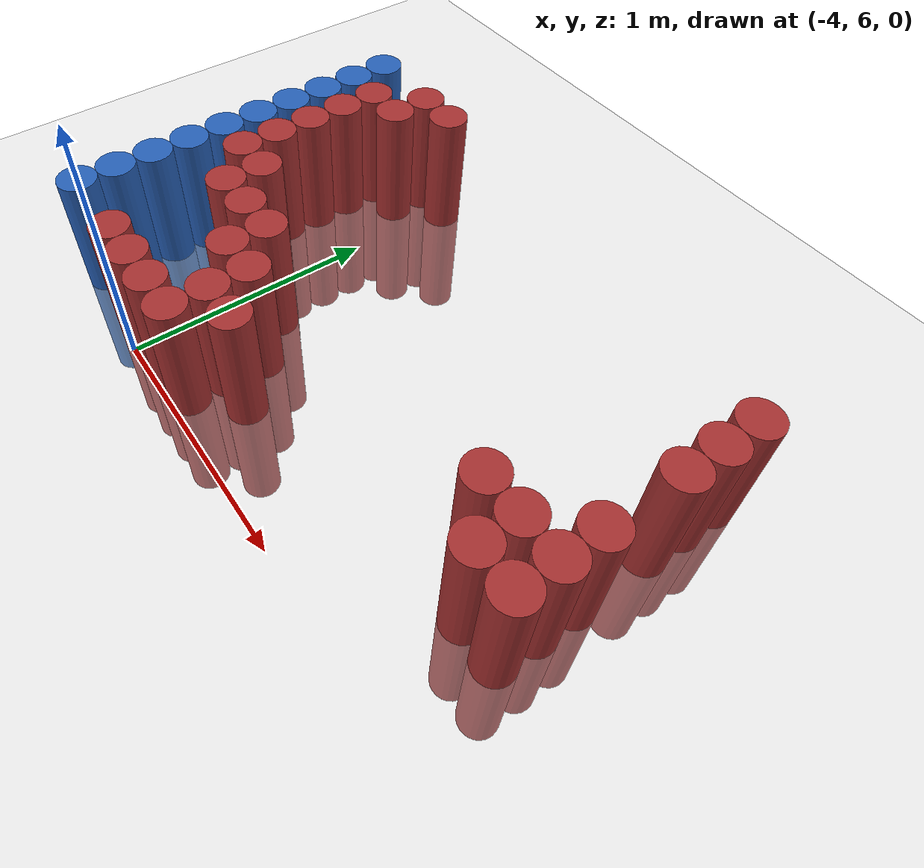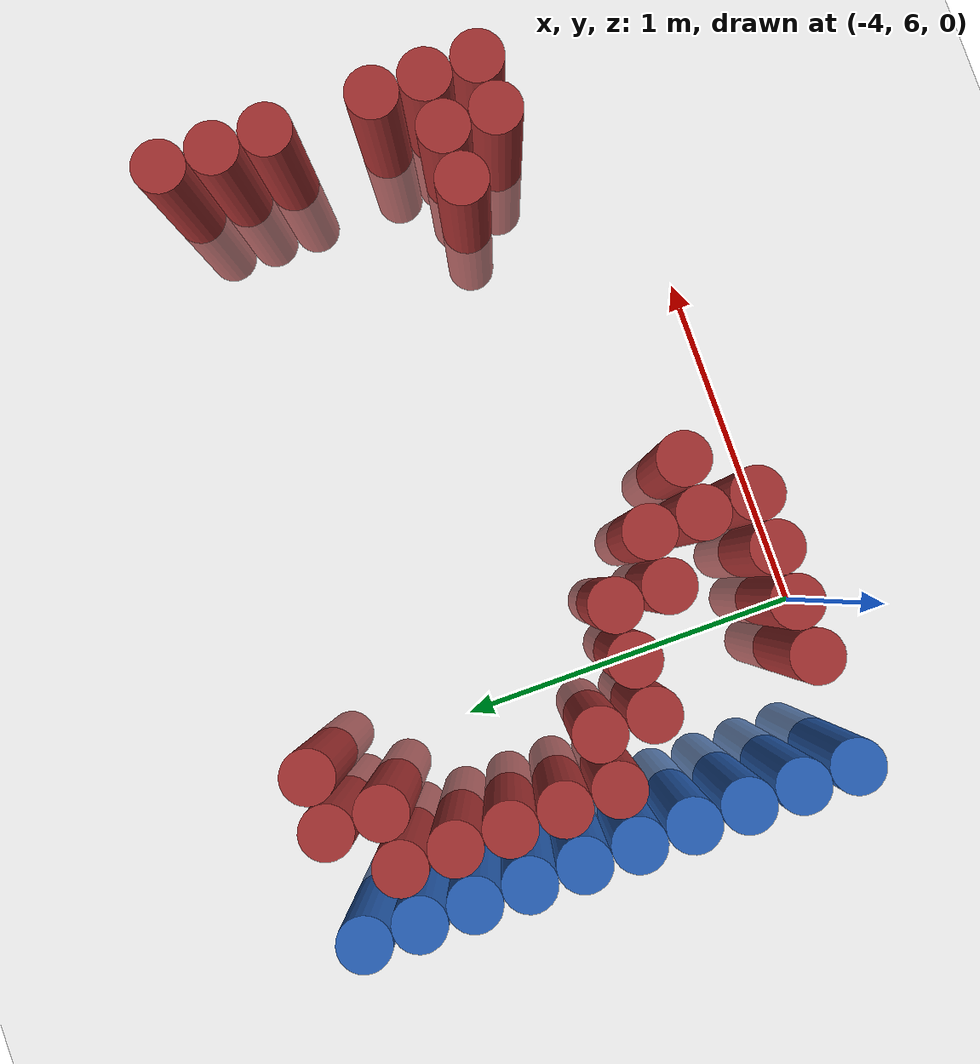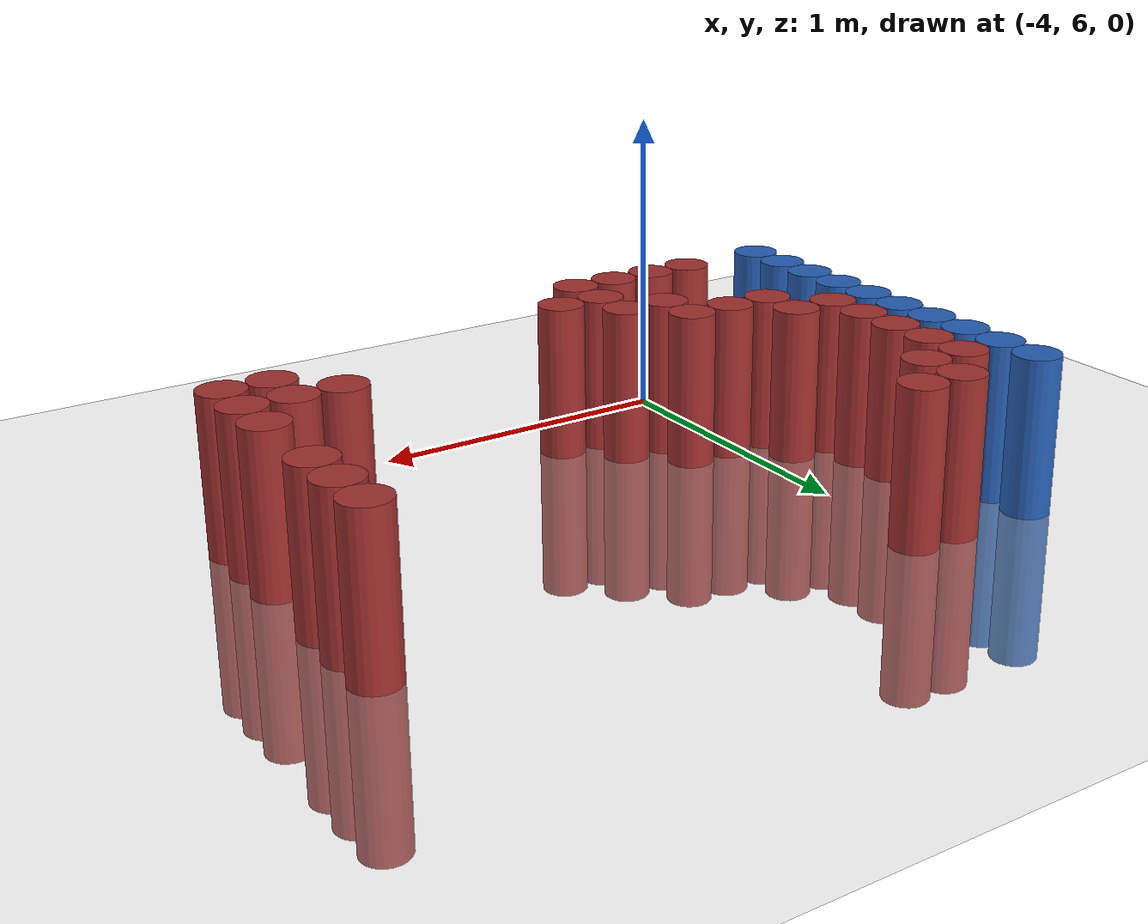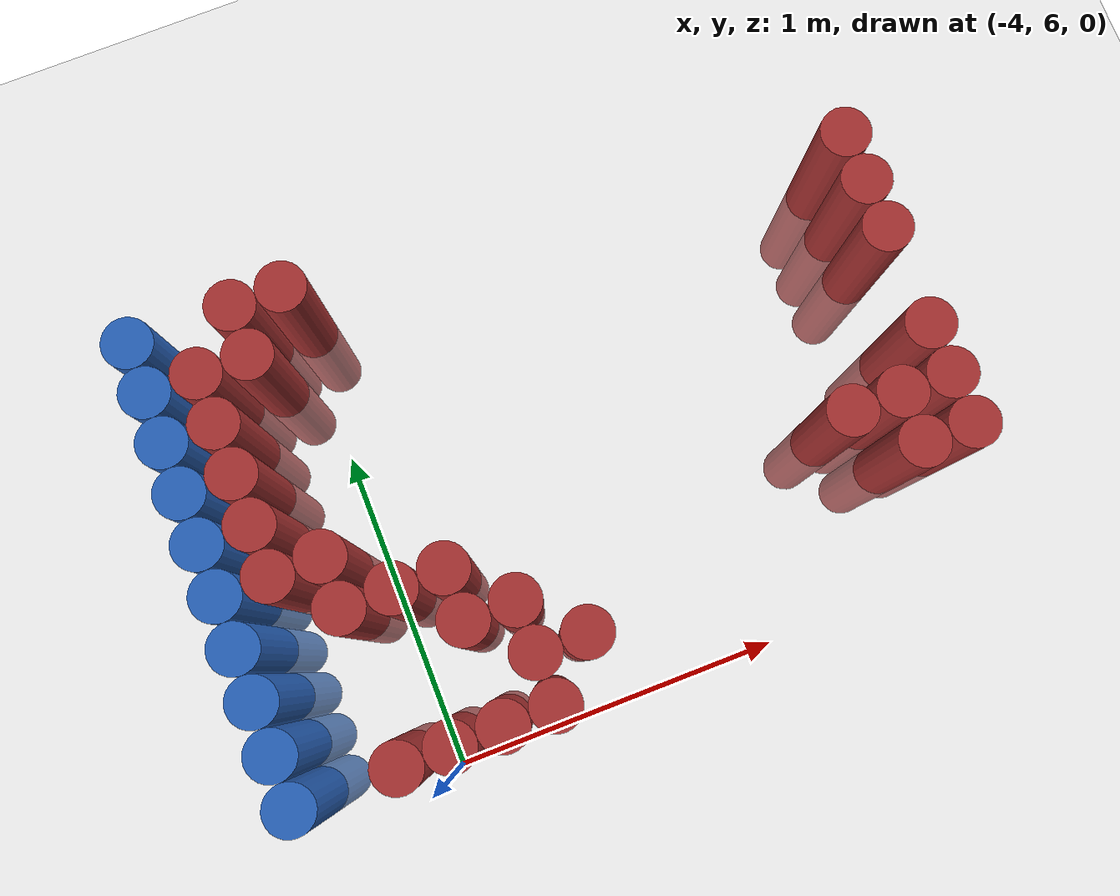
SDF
<sdf version="1.6">
 <world name="default">
  <model name="ground_plane">
   <static>1</static>
   <link name="link">
    <collision name="collision">
     <geometry><plane><normal>0 0 1</normal><size>100 100</size></plane></geometry>
     <surface><friction><ode><mu>100</mu><mu2>50</mu2></ode></friction></surface>
    </collision>
    <visual name="visual">
     <cast_shadows>0</cast_shadows>
     <geometry><plane><normal>0 0 1</normal><size>100 100</size></plane></geometry>
     <material>
      <script><uri>file://media/materials/scripts/gazebo.material</uri><name>Gazebo/Grey</name></script>
     </material>
    </visual>
   </link>
  </model>
  <model name="unit_cylinder_102">
   <static>1</static>
   <pose>-4.425000 6.075000 0.000000 0.000000 0.000000 0.000000</pose>
   <link name="link">
    <inertial>
     <mass>1</mass>
     <inertia><ixx>0.145833</ixx><ixy>0</ixy><ixz>0</ixz><iyy>0.145833</iyy><iyz>0</iyz><izz>0.125</izz></inertia>
    </inertial>
    <collision name="collision">
     <geometry><cylinder><radius>0.075000</radius><length>1</length></cylinder></geometry>
    </collision>
    <visual name="visual">
     <geometry><cylinder><radius>0.075000</radius><length>1</length></cylinder></geometry>
     <material>
      <ambient>0.152000 0.379000 0.720000 1</ambient>
      <diffuse>0.152000 0.379000 0.720000 1</diffuse>
     </material>
     <material>
      <script><name>Gazebo/Grey</name><uri>file://media/materials/scripts/gazebo.material</uri></script>
     </material>
    </visual>
    <sensor name="sensor_contact" type="contact"><contact><collision>collision</collision></contact></sensor>
   </link>
   <plugin filename="gz-sim-touchplugin-system" name="gz::sim::systems::TouchPlugin">
    <target>robot</target>
    <namespace>robot</namespace>
    <time>0.001</time>
    <enabled>true</enabled>
   </plugin>
  </model>
  <model name="unit_cylinder_103">
   <static>1</static>
   <pose>-4.425000 6.225000 0.000000 0.000000 0.000000 0.000000</pose>
   <link name="link">
    <inertial>
     <mass>1</mass>
     <inertia><ixx>0.145833</ixx><ixy>0</ixy><ixz>0</ixz><iyy>0.145833</iyy><iyz>0</iyz><izz>0.125</izz></inertia>
    </inertial>
    <collision name="collision">
     <geometry><cylinder><radius>0.075000</radius><length>1</length></cylinder></geometry>
    </collision>
    <visual name="visual">
     <geometry><cylinder><radius>0.075000</radius><length>1</length></cylinder></geometry>
     <material>
      <ambient>0.152000 0.379000 0.720000 1</ambient>
      <diffuse>0.152000 0.379000 0.720000 1</diffuse>
     </material>
     <material>
      <script><name>Gazebo/Grey</name><uri>file://media/materials/scripts/gazebo.material</uri></script>
     </material>
    </visual>
    <sensor name="sensor_contact" type="contact"><contact><collision>collision</collision></contact></sensor>
   </link>
   <plugin filename="gz-sim-touchplugin-system" name="gz::sim::systems::TouchPlugin">
    <target>robot</target>
    <namespace>robot</namespace>
    <time>0.001</time>
    <enabled>true</enabled>
   </plugin>
  </model>
  <model name="unit_cylinder_104">
   <static>1</static>
   <pose>-4.425000 6.375000 0.000000 0.000000 0.000000 0.000000</pose>
   <link name="link">
    <inertial>
     <mass>1</mass>
     <inertia><ixx>0.145833</ixx><ixy>0</ixy><ixz>0</ixz><iyy>0.145833</iyy><iyz>0</iyz><izz>0.125</izz></inertia>
    </inertial>
    <collision name="collision">
     <geometry><cylinder><radius>0.075000</radius><length>1</length></cylinder></geometry>
    </collision>
    <visual name="visual">
     <geometry><cylinder><radius>0.075000</radius><length>1</length></cylinder></geometry>
     <material>
      <ambient>0.152000 0.379000 0.720000 1</ambient>
      <diffuse>0.152000 0.379000 0.720000 1</diffuse>
     </material>
     <material>
      <script><name>Gazebo/Grey</name><uri>file://media/materials/scripts/gazebo.material</uri></script>
     </material>
    </visual>
    <sensor name="sensor_contact" type="contact"><contact><collision>collision</collision></contact></sensor>
   </link>
   <plugin filename="gz-sim-touchplugin-system" name="gz::sim::systems::TouchPlugin">
    <target>robot</target>
    <namespace>robot</namespace>
    <time>0.001</time>
    <enabled>true</enabled>
   </plugin>
  </model>
  <model name="unit_cylinder_105">
   <static>1</static>
   <pose>-4.425000 6.525000 0.000000 0.000000 0.000000 0.000000</pose>
   <link name="link">
    <inertial>
     <mass>1</mass>
     <inertia><ixx>0.145833</ixx><ixy>0</ixy><ixz>0</ixz><iyy>0.145833</iyy><iyz>0</iyz><izz>0.125</izz></inertia>
    </inertial>
    <collision name="collision">
     <geometry><cylinder><radius>0.075000</radius><length>1</length></cylinder></geometry>
    </collision>
    <visual name="visual">
     <geometry><cylinder><radius>0.075000</radius><length>1</length></cylinder></geometry>
     <material>
      <ambient>0.152000 0.379000 0.720000 1</ambient>
      <diffuse>0.152000 0.379000 0.720000 1</diffuse>
     </material>
     <material>
      <script><name>Gazebo/Grey</name><uri>file://media/materials/scripts/gazebo.material</uri></script>
     </material>
    </visual>
    <sensor name="sensor_contact" type="contact"><contact><collision>collision</collision></contact></sensor>
   </link>
   <plugin filename="gz-sim-touchplugin-system" name="gz::sim::systems::TouchPlugin">
    <target>robot</target>
    <namespace>robot</namespace>
    <time>0.001</time>
    <enabled>true</enabled>
   </plugin>
  </model>
  <model name="unit_cylinder_106">
   <static>1</static>
   <pose>-4.425000 6.675000 0.000000 0.000000 0.000000 0.000000</pose>
   <link name="link">
    <inertial>
     <mass>1</mass>
     <inertia><ixx>0.145833</ixx><ixy>0</ixy><ixz>0</ixz><iyy>0.145833</iyy><iyz>0</iyz><izz>0.125</izz></inertia>
    </inertial>
    <collision name="collision">
     <geometry><cylinder><radius>0.075000</radius><length>1</length></cylinder></geometry>
    </collision>
    <visual name="visual">
     <geometry><cylinder><radius>0.075000</radius><length>1</length></cylinder></geometry>
     <material>
      <ambient>0.152000 0.379000 0.720000 1</ambient>
      <diffuse>0.152000 0.379000 0.720000 1</diffuse>
     </material>
     <material>
      <script><name>Gazebo/Grey</name><uri>file://media/materials/scripts/gazebo.material</uri></script>
     </material>
    </visual>
    <sensor name="sensor_contact" type="contact"><contact><collision>collision</collision></contact></sensor>
   </link>
   <plugin filename="gz-sim-touchplugin-system" name="gz::sim::systems::TouchPlugin">
    <target>robot</target>
    <namespace>robot</namespace>
    <time>0.001</time>
    <enabled>true</enabled>
   </plugin>
  </model>
  <model name="unit_cylinder_107">
   <static>1</static>
   <pose>-4.425000 6.825000 0.000000 0.000000 0.000000 0.000000</pose>
   <link name="link">
    <inertial>
     <mass>1</mass>
     <inertia><ixx>0.145833</ixx><ixy>0</ixy><ixz>0</ixz><iyy>0.145833</iyy><iyz>0</iyz><izz>0.125</izz></inertia>
    </inertial>
    <collision name="collision">
     <geometry><cylinder><radius>0.075000</radius><length>1</length></cylinder></geometry>
    </collision>
    <visual name="visual">
     <geometry><cylinder><radius>0.075000</radius><length>1</length></cylinder></geometry>
     <material>
      <ambient>0.152000 0.379000 0.720000 1</ambient>
      <diffuse>0.152000 0.379000 0.720000 1</diffuse>
     </material>
     <material>
      <script><name>Gazebo/Grey</name><uri>file://media/materials/scripts/gazebo.material</uri></script>
     </material>
    </visual>
    <sensor name="sensor_contact" type="contact"><contact><collision>collision</collision></contact></sensor>
   </link>
   <plugin filename="gz-sim-touchplugin-system" name="gz::sim::systems::TouchPlugin">
    <target>robot</target>
    <namespace>robot</namespace>
    <time>0.001</time>
    <enabled>true</enabled>
   </plugin>
  </model>
  <model name="unit_cylinder_108">
   <static>1</static>
   <pose>-4.425000 6.975000 0.000000 0.000000 0.000000 0.000000</pose>
   <link name="link">
    <inertial>
     <mass>1</mass>
     <inertia><ixx>0.145833</ixx><ixy>0</ixy><ixz>0</ixz><iyy>0.145833</iyy><iyz>0</iyz><izz>0.125</izz></inertia>
    </inertial>
    <collision name="collision">
     <geometry><cylinder><radius>0.075000</radius><length>1</length></cylinder></geometry>
    </collision>
    <visual name="visual">
     <geometry><cylinder><radius>0.075000</radius><length>1</length></cylinder></geometry>
     <material>
      <ambient>0.152000 0.379000 0.720000 1</ambient>
      <diffuse>0.152000 0.379000 0.720000 1</diffuse>
     </material>
     <material>
      <script><name>Gazebo/Grey</name><uri>file://media/materials/scripts/gazebo.material</uri></script>
     </material>
    </visual>
    <sensor name="sensor_contact" type="contact"><contact><collision>collision</collision></contact></sensor>
   </link>
   <plugin filename="gz-sim-touchplugin-system" name="gz::sim::systems::TouchPlugin">
    <target>robot</target>
    <namespace>robot</namespace>
    <time>0.001</time>
    <enabled>true</enabled>
   </plugin>
  </model>
  <model name="unit_cylinder_109">
   <static>1</static>
   <pose>-4.425000 7.125000 0.000000 0.000000 0.000000 0.000000</pose>
   <link name="link">
    <inertial>
     <mass>1</mass>
     <inertia><ixx>0.145833</ixx><ixy>0</ixy><ixz>0</ixz><iyy>0.145833</iyy><iyz>0</iyz><izz>0.125</izz></inertia>
    </inertial>
    <collision name="collision">
     <geometry><cylinder><radius>0.075000</radius><length>1</length></cylinder></geometry>
    </collision>
    <visual name="visual">
     <geometry><cylinder><radius>0.075000</radius><length>1</length></cylinder></geometry>
     <material>
      <ambient>0.152000 0.379000 0.720000 1</ambient>
      <diffuse>0.152000 0.379000 0.720000 1</diffuse>
     </material>
     <material>
      <script><name>Gazebo/Grey</name><uri>file://media/materials/scripts/gazebo.material</uri></script>
     </material>
    </visual>
    <sensor name="sensor_contact" type="contact"><contact><collision>collision</collision></contact></sensor>
   </link>
   <plugin filename="gz-sim-touchplugin-system" name="gz::sim::systems::TouchPlugin">
    <target>robot</target>
    <namespace>robot</namespace>
    <time>0.001</time>
    <enabled>true</enabled>
   </plugin>
  </model>
  <model name="unit_cylinder_110">
   <static>1</static>
   <pose>-4.425000 7.275000 0.000000 0.000000 0.000000 0.000000</pose>
   <link name="link">
    <inertial>
     <mass>1</mass>
     <inertia><ixx>0.145833</ixx><ixy>0</ixy><ixz>0</ixz><iyy>0.145833</iyy><iyz>0</iyz><izz>0.125</izz></inertia>
    </inertial>
    <collision name="collision">
     <geometry><cylinder><radius>0.075000</radius><length>1</length></cylinder></geometry>
    </collision>
    <visual name="visual">
     <geometry><cylinder><radius>0.075000</radius><length>1</length></cylinder></geometry>
     <material>
      <ambient>0.152000 0.379000 0.720000 1</ambient>
      <diffuse>0.152000 0.379000 0.720000 1</diffuse>
     </material>
     <material>
      <script><name>Gazebo/Grey</name><uri>file://media/materials/scripts/gazebo.material</uri></script>
     </material>
    </visual>
    <sensor name="sensor_contact" type="contact"><contact><collision>collision</collision></contact></sensor>
   </link>
   <plugin filename="gz-sim-touchplugin-system" name="gz::sim::systems::TouchPlugin">
    <target>robot</target>
    <namespace>robot</namespace>
    <time>0.001</time>
    <enabled>true</enabled>
   </plugin>
  </model>
  <model name="unit_cylinder_111">
   <static>1</static>
   <pose>-4.425000 7.425000 0.000000 0.000000 0.000000 0.000000</pose>
   <link name="link">
    <inertial>
     <mass>1</mass>
     <inertia><ixx>0.145833</ixx><ixy>0</ixy><ixz>0</ixz><iyy>0.145833</iyy><iyz>0</iyz><izz>0.125</izz></inertia>
    </inertial>
    <collision name="collision">
     <geometry><cylinder><radius>0.075000</radius><length>1</length></cylinder></geometry>
    </collision>
    <visual name="visual">
     <geometry><cylinder><radius>0.075000</radius><length>1</length></cylinder></geometry>
     <material>
      <ambient>0.152000 0.379000 0.720000 1</ambient>
      <diffuse>0.152000 0.379000 0.720000 1</diffuse>
     </material>
     <material>
      <script><name>Gazebo/Grey</name><uri>file://media/materials/scripts/gazebo.material</uri></script>
     </material>
    </visual>
    <sensor name="sensor_contact" type="contact"><contact><collision>collision</collision></contact></sensor>
   </link>
   <plugin filename="gz-sim-touchplugin-system" name="gz::sim::systems::TouchPlugin">
    <target>robot</target>
    <namespace>robot</namespace>
    <time>0.001</time>
    <enabled>true</enabled>
   </plugin>
  </model>
  <model name="unit_cylinder_128">
   <static>1</static>
   <pose>-4.275000 6.675000 0.000000 0.000000 0.000000 0.000000</pose>
   <link name="link">
    <inertial>
     <mass>1</mass>
     <inertia><ixx>0.145833</ixx><ixy>0</ixy><ixz>0</ixz><iyy>0.145833</iyy><iyz>0</iyz><izz>0.125</izz></inertia>
    </inertial>
    <collision name="collision">
     <geometry><cylinder><radius>0.075000</radius><length>1</length></cylinder></geometry>
    </collision>
    <visual name="visual">
     <geometry><cylinder><radius>0.075000</radius><length>1</length></cylinder></geometry>
     <material>
      <ambient>0.648000 0.192000 0.192000 1</ambient>
      <diffuse>0.648000 0.192000 0.192000 1</diffuse>
     </material>
     <material>
      <script><name>Gazebo/Grey</name><uri>file://media/materials/scripts/gazebo.material</uri></script>
     </material>
    </visual>
    <sensor name="sensor_contact" type="contact"><contact><collision>collision</collision></contact></sensor>
   </link>
   <plugin filename="gz-sim-touchplugin-system" name="gz::sim::systems::TouchPlugin">
    <target>robot</target>
    <namespace>robot</namespace>
    <time>0.001</time>
    <enabled>true</enabled>
   </plugin>
  </model>
  <model name="unit_cylinder_129">
   <static>1</static>
   <pose>-4.275000 6.825000 0.000000 0.000000 0.000000 0.000000</pose>
   <link name="link">
    <inertial>
     <mass>1</mass>
     <inertia><ixx>0.145833</ixx><ixy>0</ixy><ixz>0</ixz><iyy>0.145833</iyy><iyz>0</iyz><izz>0.125</izz></inertia>
    </inertial>
    <collision name="collision">
     <geometry><cylinder><radius>0.075000</radius><length>1</length></cylinder></geometry>
    </collision>
    <visual name="visual">
     <geometry><cylinder><radius>0.075000</radius><length>1</length></cylinder></geometry>
     <material>
      <ambient>0.648000 0.192000 0.192000 1</ambient>
      <diffuse>0.648000 0.192000 0.192000 1</diffuse>
     </material>
     <material>
      <script><name>Gazebo/Grey</name><uri>file://media/materials/scripts/gazebo.material</uri></script>
     </material>
    </visual>
    <sensor name="sensor_contact" type="contact"><contact><collision>collision</collision></contact></sensor>
   </link>
   <plugin filename="gz-sim-touchplugin-system" name="gz::sim::systems::TouchPlugin">
    <target>robot</target>
    <namespace>robot</namespace>
    <time>0.001</time>
    <enabled>true</enabled>
   </plugin>
  </model>
  <model name="unit_cylinder_130">
   <static>1</static>
   <pose>-4.275000 6.975000 0.000000 0.000000 0.000000 0.000000</pose>
   <link name="link">
    <inertial>
     <mass>1</mass>
     <inertia><ixx>0.145833</ixx><ixy>0</ixy><ixz>0</ixz><iyy>0.145833</iyy><iyz>0</iyz><izz>0.125</izz></inertia>
    </inertial>
    <collision name="collision">
     <geometry><cylinder><radius>0.075000</radius><length>1</length></cylinder></geometry>
    </collision>
    <visual name="visual">
     <geometry><cylinder><radius>0.075000</radius><length>1</length></cylinder></geometry>
     <material>
      <ambient>0.648000 0.192000 0.192000 1</ambient>
      <diffuse>0.648000 0.192000 0.192000 1</diffuse>
     </material>
     <material>
      <script><name>Gazebo/Grey</name><uri>file://media/materials/scripts/gazebo.material</uri></script>
     </material>
    </visual>
    <sensor name="sensor_contact" type="contact"><contact><collision>collision</collision></contact></sensor>
   </link>
   <plugin filename="gz-sim-touchplugin-system" name="gz::sim::systems::TouchPlugin">
    <target>robot</target>
    <namespace>robot</namespace>
    <time>0.001</time>
    <enabled>true</enabled>
   </plugin>
  </model>
  <model name="unit_cylinder_131">
   <static>1</static>
   <pose>-4.275000 7.125000 0.000000 0.000000 0.000000 0.000000</pose>
   <link name="link">
    <inertial>
     <mass>1</mass>
     <inertia><ixx>0.145833</ixx><ixy>0</ixy><ixz>0</ixz><iyy>0.145833</iyy><iyz>0</iyz><izz>0.125</izz></inertia>
    </inertial>
    <collision name="collision">
     <geometry><cylinder><radius>0.075000</radius><length>1</length></cylinder></geometry>
    </collision>
    <visual name="visual">
     <geometry><cylinder><radius>0.075000</radius><length>1</length></cylinder></geometry>
     <material>
      <ambient>0.648000 0.192000 0.192000 1</ambient>
      <diffuse>0.648000 0.192000 0.192000 1</diffuse>
     </material>
     <material>
      <script><name>Gazebo/Grey</name><uri>file://media/materials/scripts/gazebo.material</uri></script>
     </material>
    </visual>
    <sensor name="sensor_contact" type="contact"><contact><collision>collision</collision></contact></sensor>
   </link>
   <plugin filename="gz-sim-touchplugin-system" name="gz::sim::systems::TouchPlugin">
    <target>robot</target>
    <namespace>robot</namespace>
    <time>0.001</time>
    <enabled>true</enabled>
   </plugin>
  </model>
  <model name="unit_cylinder_132">
   <static>1</static>
   <pose>-4.275000 7.275000 0.000000 0.000000 0.000000 0.000000</pose>
   <link name="link">
    <inertial>
     <mass>1</mass>
     <inertia><ixx>0.145833</ixx><ixy>0</ixy><ixz>0</ixz><iyy>0.145833</iyy><iyz>0</iyz><izz>0.125</izz></inertia>
    </inertial>
    <collision name="collision">
     <geometry><cylinder><radius>0.075000</radius><length>1</length></cylinder></geometry>
    </collision>
    <visual name="visual">
     <geometry><cylinder><radius>0.075000</radius><length>1</length></cylinder></geometry>
     <material>
      <ambient>0.648000 0.192000 0.192000 1</ambient>
      <diffuse>0.648000 0.192000 0.192000 1</diffuse>
     </material>
     <material>
      <script><name>Gazebo/Grey</name><uri>file://media/materials/scripts/gazebo.material</uri></script>
     </material>
    </visual>
    <sensor name="sensor_contact" type="contact"><contact><collision>collision</collision></contact></sensor>
   </link>
   <plugin filename="gz-sim-touchplugin-system" name="gz::sim::systems::TouchPlugin">
    <target>robot</target>
    <namespace>robot</namespace>
    <time>0.001</time>
    <enabled>true</enabled>
   </plugin>
  </model>
  <model name="unit_cylinder_144">
   <static>1</static>
   <pose>-4.125000 6.075000 0.000000 0.000000 0.000000 0.000000</pose>
   <link name="link">
    <inertial>
     <mass>1</mass>
     <inertia><ixx>0.145833</ixx><ixy>0</ixy><ixz>0</ixz><iyy>0.145833</iyy><iyz>0</iyz><izz>0.125</izz></inertia>
    </inertial>
    <collision name="collision">
     <geometry><cylinder><radius>0.075000</radius><length>1</length></cylinder></geometry>
    </collision>
    <visual name="visual">
     <geometry><cylinder><radius>0.075000</radius><length>1</length></cylinder></geometry>
     <material>
      <ambient>0.648000 0.192000 0.192000 1</ambient>
      <diffuse>0.648000 0.192000 0.192000 1</diffuse>
     </material>
     <material>
      <script><name>Gazebo/Grey</name><uri>file://media/materials/scripts/gazebo.material</uri></script>
     </material>
    </visual>
    <sensor name="sensor_contact" type="contact"><contact><collision>collision</collision></contact></sensor>
   </link>
   <plugin filename="gz-sim-touchplugin-system" name="gz::sim::systems::TouchPlugin">
    <target>robot</target>
    <namespace>robot</namespace>
    <time>0.001</time>
    <enabled>true</enabled>
   </plugin>
  </model>
  <model name="unit_cylinder_145">
   <static>1</static>
   <pose>-4.125000 6.525000 0.000000 0.000000 0.000000 0.000000</pose>
   <link name="link">
    <inertial>
     <mass>1</mass>
     <inertia><ixx>0.145833</ixx><ixy>0</ixy><ixz>0</ixz><iyy>0.145833</iyy><iyz>0</iyz><izz>0.125</izz></inertia>
    </inertial>
    <collision name="collision">
     <geometry><cylinder><radius>0.075000</radius><length>1</length></cylinder></geometry>
    </collision>
    <visual name="visual">
     <geometry><cylinder><radius>0.075000</radius><length>1</length></cylinder></geometry>
     <material>
      <ambient>0.648000 0.192000 0.192000 1</ambient>
      <diffuse>0.648000 0.192000 0.192000 1</diffuse>
     </material>
     <material>
      <script><name>Gazebo/Grey</name><uri>file://media/materials/scripts/gazebo.material</uri></script>
     </material>
    </visual>
    <sensor name="sensor_contact" type="contact"><contact><collision>collision</collision></contact></sensor>
   </link>
   <plugin filename="gz-sim-touchplugin-system" name="gz::sim::systems::TouchPlugin">
    <target>robot</target>
    <namespace>robot</namespace>
    <time>0.001</time>
    <enabled>true</enabled>
   </plugin>
  </model>
  <model name="unit_cylinder_146">
   <static>1</static>
   <pose>-4.125000 6.675000 0.000000 0.000000 0.000000 0.000000</pose>
   <link name="link">
    <inertial>
     <mass>1</mass>
     <inertia><ixx>0.145833</ixx><ixy>0</ixy><ixz>0</ixz><iyy>0.145833</iyy><iyz>0</iyz><izz>0.125</izz></inertia>
    </inertial>
    <collision name="collision">
     <geometry><cylinder><radius>0.075000</radius><length>1</length></cylinder></geometry>
    </collision>
    <visual name="visual">
     <geometry><cylinder><radius>0.075000</radius><length>1</length></cylinder></geometry>
     <material>
      <ambient>0.648000 0.192000 0.192000 1</ambient>
      <diffuse>0.648000 0.192000 0.192000 1</diffuse>
     </material>
     <material>
      <script><name>Gazebo/Grey</name><uri>file://media/materials/scripts/gazebo.material</uri></script>
     </material>
    </visual>
    <sensor name="sensor_contact" type="contact"><contact><collision>collision</collision></contact></sensor>
   </link>
   <plugin filename="gz-sim-touchplugin-system" name="gz::sim::systems::TouchPlugin">
    <target>robot</target>
    <namespace>robot</namespace>
    <time>0.001</time>
    <enabled>true</enabled>
   </plugin>
  </model>
  <model name="unit_cylinder_147">
   <static>1</static>
   <pose>-4.125000 7.275000 0.000000 0.000000 0.000000 0.000000</pose>
   <link name="link">
    <inertial>
     <mass>1</mass>
     <inertia><ixx>0.145833</ixx><ixy>0</ixy><ixz>0</ixz><iyy>0.145833</iyy><iyz>0</iyz><izz>0.125</izz></inertia>
    </inertial>
    <collision name="collision">
     <geometry><cylinder><radius>0.075000</radius><length>1</length></cylinder></geometry>
    </collision>
    <visual name="visual">
     <geometry><cylinder><radius>0.075000</radius><length>1</length></cylinder></geometry>
     <material>
      <ambient>0.648000 0.192000 0.192000 1</ambient>
      <diffuse>0.648000 0.192000 0.192000 1</diffuse>
     </material>
     <material>
      <script><name>Gazebo/Grey</name><uri>file://media/materials/scripts/gazebo.material</uri></script>
     </material>
    </visual>
    <sensor name="sensor_contact" type="contact"><contact><collision>collision</collision></contact></sensor>
   </link>
   <plugin filename="gz-sim-touchplugin-system" name="gz::sim::systems::TouchPlugin">
    <target>robot</target>
    <namespace>robot</namespace>
    <time>0.001</time>
    <enabled>true</enabled>
   </plugin>
  </model>
  <model name="unit_cylinder_148">
   <static>1</static>
   <pose>-4.125000 7.425000 0.000000 0.000000 0.000000 0.000000</pose>
   <link name="link">
    <inertial>
     <mass>1</mass>
     <inertia><ixx>0.145833</ixx><ixy>0</ixy><ixz>0</ixz><iyy>0.145833</iyy><iyz>0</iyz><izz>0.125</izz></inertia>
    </inertial>
    <collision name="collision">
     <geometry><cylinder><radius>0.075000</radius><length>1</length></cylinder></geometry>
    </collision>
    <visual name="visual">
     <geometry><cylinder><radius>0.075000</radius><length>1</length></cylinder></geometry>
     <material>
      <ambient>0.648000 0.192000 0.192000 1</ambient>
      <diffuse>0.648000 0.192000 0.192000 1</diffuse>
     </material>
     <material>
      <script><name>Gazebo/Grey</name><uri>file://media/materials/scripts/gazebo.material</uri></script>
     </material>
    </visual>
    <sensor name="sensor_contact" type="contact"><contact><collision>collision</collision></contact></sensor>
   </link>
   <plugin filename="gz-sim-touchplugin-system" name="gz::sim::systems::TouchPlugin">
    <target>robot</target>
    <namespace>robot</namespace>
    <time>0.001</time>
    <enabled>true</enabled>
   </plugin>
  </model>
  <model name="unit_cylinder_154">
   <static>1</static>
   <pose>-3.975000 6.075000 0.000000 0.000000 0.000000 0.000000</pose>
   <link name="link">
    <inertial>
     <mass>1</mass>
     <inertia><ixx>0.145833</ixx><ixy>0</ixy><ixz>0</ixz><iyy>0.145833</iyy><iyz>0</iyz><izz>0.125</izz></inertia>
    </inertial>
    <collision name="collision">
     <geometry><cylinder><radius>0.075000</radius><length>1</length></cylinder></geometry>
    </collision>
    <visual name="visual">
     <geometry><cylinder><radius>0.075000</radius><length>1</length></cylinder></geometry>
     <material>
      <ambient>0.648000 0.192000 0.192000 1</ambient>
      <diffuse>0.648000 0.192000 0.192000 1</diffuse>
     </material>
     <material>
      <script><name>Gazebo/Grey</name><uri>file://media/materials/scripts/gazebo.material</uri></script>
     </material>
    </visual>
    <sensor name="sensor_contact" type="contact"><contact><collision>collision</collision></contact></sensor>
   </link>
   <plugin filename="gz-sim-touchplugin-system" name="gz::sim::systems::TouchPlugin">
    <target>robot</target>
    <namespace>robot</namespace>
    <time>0.001</time>
    <enabled>true</enabled>
   </plugin>
  </model>
  <model name="unit_cylinder_155">
   <static>1</static>
   <pose>-3.975000 6.525000 0.000000 0.000000 0.000000 0.000000</pose>
   <link name="link">
    <inertial>
     <mass>1</mass>
     <inertia><ixx>0.145833</ixx><ixy>0</ixy><ixz>0</ixz><iyy>0.145833</iyy><iyz>0</iyz><izz>0.125</izz></inertia>
    </inertial>
    <collision name="collision">
     <geometry><cylinder><radius>0.075000</radius><length>1</length></cylinder></geometry>
    </collision>
    <visual name="visual">
     <geometry><cylinder><radius>0.075000</radius><length>1</length></cylinder></geometry>
     <material>
      <ambient>0.648000 0.192000 0.192000 1</ambient>
      <diffuse>0.648000 0.192000 0.192000 1</diffuse>
     </material>
     <material>
      <script><name>Gazebo/Grey</name><uri>file://media/materials/scripts/gazebo.material</uri></script>
     </material>
    </visual>
    <sensor name="sensor_contact" type="contact"><contact><collision>collision</collision></contact></sensor>
   </link>
   <plugin filename="gz-sim-touchplugin-system" name="gz::sim::systems::TouchPlugin">
    <target>robot</target>
    <namespace>robot</namespace>
    <time>0.001</time>
    <enabled>true</enabled>
   </plugin>
  </model>
  <model name="unit_cylinder_156">
   <static>1</static>
   <pose>-3.975000 7.425000 0.000000 0.000000 0.000000 0.000000</pose>
   <link name="link">
    <inertial>
     <mass>1</mass>
     <inertia><ixx>0.145833</ixx><ixy>0</ixy><ixz>0</ixz><iyy>0.145833</iyy><iyz>0</iyz><izz>0.125</izz></inertia>
    </inertial>
    <collision name="collision">
     <geometry><cylinder><radius>0.075000</radius><length>1</length></cylinder></geometry>
    </collision>
    <visual name="visual">
     <geometry><cylinder><radius>0.075000</radius><length>1</length></cylinder></geometry>
     <material>
      <ambient>0.648000 0.192000 0.192000 1</ambient>
      <diffuse>0.648000 0.192000 0.192000 1</diffuse>
     </material>
     <material>
      <script><name>Gazebo/Grey</name><uri>file://media/materials/scripts/gazebo.material</uri></script>
     </material>
    </visual>
    <sensor name="sensor_contact" type="contact"><contact><collision>collision</collision></contact></sensor>
   </link>
   <plugin filename="gz-sim-touchplugin-system" name="gz::sim::systems::TouchPlugin">
    <target>robot</target>
    <namespace>robot</namespace>
    <time>0.001</time>
    <enabled>true</enabled>
   </plugin>
  </model>
  <model name="unit_cylinder_161">
   <static>1</static>
   <pose>-3.825000 6.075000 0.000000 0.000000 0.000000 0.000000</pose>
   <link name="link">
    <inertial>
     <mass>1</mass>
     <inertia><ixx>0.145833</ixx><ixy>0</ixy><ixz>0</ixz><iyy>0.145833</iyy><iyz>0</iyz><izz>0.125</izz></inertia>
    </inertial>
    <collision name="collision">
     <geometry><cylinder><radius>0.075000</radius><length>1</length></cylinder></geometry>
    </collision>
    <visual name="visual">
     <geometry><cylinder><radius>0.075000</radius><length>1</length></cylinder></geometry>
     <material>
      <ambient>0.648000 0.192000 0.192000 1</ambient>
      <diffuse>0.648000 0.192000 0.192000 1</diffuse>
     </material>
     <material>
      <script><name>Gazebo/Grey</name><uri>file://media/materials/scripts/gazebo.material</uri></script>
     </material>
    </visual>
    <sensor name="sensor_contact" type="contact"><contact><collision>collision</collision></contact></sensor>
   </link>
   <plugin filename="gz-sim-touchplugin-system" name="gz::sim::systems::TouchPlugin">
    <target>robot</target>
    <namespace>robot</namespace>
    <time>0.001</time>
    <enabled>true</enabled>
   </plugin>
  </model>
  <model name="unit_cylinder_162">
   <static>1</static>
   <pose>-3.825000 6.375000 0.000000 0.000000 0.000000 0.000000</pose>
   <link name="link">
    <inertial>
     <mass>1</mass>
     <inertia><ixx>0.145833</ixx><ixy>0</ixy><ixz>0</ixz><iyy>0.145833</iyy><iyz>0</iyz><izz>0.125</izz></inertia>
    </inertial>
    <collision name="collision">
     <geometry><cylinder><radius>0.075000</radius><length>1</length></cylinder></geometry>
    </collision>
    <visual name="visual">
     <geometry><cylinder><radius>0.075000</radius><length>1</length></cylinder></geometry>
     <material>
      <ambient>0.648000 0.192000 0.192000 1</ambient>
      <diffuse>0.648000 0.192000 0.192000 1</diffuse>
     </material>
     <material>
      <script><name>Gazebo/Grey</name><uri>file://media/materials/scripts/gazebo.material</uri></script>
     </material>
    </visual>
    <sensor name="sensor_contact" type="contact"><contact><collision>collision</collision></contact></sensor>
   </link>
   <plugin filename="gz-sim-touchplugin-system" name="gz::sim::systems::TouchPlugin">
    <target>robot</target>
    <namespace>robot</namespace>
    <time>0.001</time>
    <enabled>true</enabled>
   </plugin>
  </model>
  <model name="unit_cylinder_163">
   <static>1</static>
   <pose>-3.825000 6.525000 0.000000 0.000000 0.000000 0.000000</pose>
   <link name="link">
    <inertial>
     <mass>1</mass>
     <inertia><ixx>0.145833</ixx><ixy>0</ixy><ixz>0</ixz><iyy>0.145833</iyy><iyz>0</iyz><izz>0.125</izz></inertia>
    </inertial>
    <collision name="collision">
     <geometry><cylinder><radius>0.075000</radius><length>1</length></cylinder></geometry>
    </collision>
    <visual name="visual">
     <geometry><cylinder><radius>0.075000</radius><length>1</length></cylinder></geometry>
     <material>
      <ambient>0.648000 0.192000 0.192000 1</ambient>
      <diffuse>0.648000 0.192000 0.192000 1</diffuse>
     </material>
     <material>
      <script><name>Gazebo/Grey</name><uri>file://media/materials/scripts/gazebo.material</uri></script>
     </material>
    </visual>
    <sensor name="sensor_contact" type="contact"><contact><collision>collision</collision></contact></sensor>
   </link>
   <plugin filename="gz-sim-touchplugin-system" name="gz::sim::systems::TouchPlugin">
    <target>robot</target>
    <namespace>robot</namespace>
    <time>0.001</time>
    <enabled>true</enabled>
   </plugin>
  </model>
  <model name="unit_cylinder_167">
   <static>1</static>
   <pose>-3.675000 6.075000 0.000000 0.000000 0.000000 0.000000</pose>
   <link name="link">
    <inertial>
     <mass>1</mass>
     <inertia><ixx>0.145833</ixx><ixy>0</ixy><ixz>0</ixz><iyy>0.145833</iyy><iyz>0</iyz><izz>0.125</izz></inertia>
    </inertial>
    <collision name="collision">
     <geometry><cylinder><radius>0.075000</radius><length>1</length></cylinder></geometry>
    </collision>
    <visual name="visual">
     <geometry><cylinder><radius>0.075000</radius><length>1</length></cylinder></geometry>
     <material>
      <ambient>0.648000 0.192000 0.192000 1</ambient>
      <diffuse>0.648000 0.192000 0.192000 1</diffuse>
     </material>
     <material>
      <script><name>Gazebo/Grey</name><uri>file://media/materials/scripts/gazebo.material</uri></script>
     </material>
    </visual>
    <sensor name="sensor_contact" type="contact"><contact><collision>collision</collision></contact></sensor>
   </link>
   <plugin filename="gz-sim-touchplugin-system" name="gz::sim::systems::TouchPlugin">
    <target>robot</target>
    <namespace>robot</namespace>
    <time>0.001</time>
    <enabled>true</enabled>
   </plugin>
  </model>
  <model name="unit_cylinder_168">
   <static>1</static>
   <pose>-3.675000 6.225000 0.000000 0.000000 0.000000 0.000000</pose>
   <link name="link">
    <inertial>
     <mass>1</mass>
     <inertia><ixx>0.145833</ixx><ixy>0</ixy><ixz>0</ixz><iyy>0.145833</iyy><iyz>0</iyz><izz>0.125</izz></inertia>
    </inertial>
    <collision name="collision">
     <geometry><cylinder><radius>0.075000</radius><length>1</length></cylinder></geometry>
    </collision>
    <visual name="visual">
     <geometry><cylinder><radius>0.075000</radius><length>1</length></cylinder></geometry>
     <material>
      <ambient>0.648000 0.192000 0.192000 1</ambient>
      <diffuse>0.648000 0.192000 0.192000 1</diffuse>
     </material>
     <material>
      <script><name>Gazebo/Grey</name><uri>file://media/materials/scripts/gazebo.material</uri></script>
     </material>
    </visual>
    <sensor name="sensor_contact" type="contact"><contact><collision>collision</collision></contact></sensor>
   </link>
   <plugin filename="gz-sim-touchplugin-system" name="gz::sim::systems::TouchPlugin">
    <target>robot</target>
    <namespace>robot</namespace>
    <time>0.001</time>
    <enabled>true</enabled>
   </plugin>
  </model>
  <model name="unit_cylinder_169">
   <static>1</static>
   <pose>-3.675000 6.375000 0.000000 0.000000 0.000000 0.000000</pose>
   <link name="link">
    <inertial>
     <mass>1</mass>
     <inertia><ixx>0.145833</ixx><ixy>0</ixy><ixz>0</ixz><iyy>0.145833</iyy><iyz>0</iyz><izz>0.125</izz></inertia>
    </inertial>
    <collision name="collision">
     <geometry><cylinder><radius>0.075000</radius><length>1</length></cylinder></geometry>
    </collision>
    <visual name="visual">
     <geometry><cylinder><radius>0.075000</radius><length>1</length></cylinder></geometry>
     <material>
      <ambient>0.648000 0.192000 0.192000 1</ambient>
      <diffuse>0.648000 0.192000 0.192000 1</diffuse>
     </material>
     <material>
      <script><name>Gazebo/Grey</name><uri>file://media/materials/scripts/gazebo.material</uri></script>
     </material>
    </visual>
    <sensor name="sensor_contact" type="contact"><contact><collision>collision</collision></contact></sensor>
   </link>
   <plugin filename="gz-sim-touchplugin-system" name="gz::sim::systems::TouchPlugin">
    <target>robot</target>
    <namespace>robot</namespace>
    <time>0.001</time>
    <enabled>true</enabled>
   </plugin>
  </model>
  <model name="unit_cylinder_170">
   <static>1</static>
   <pose>-3.525000 6.225000 0.000000 0.000000 0.000000 0.000000</pose>
   <link name="link">
    <inertial>
     <mass>1</mass>
     <inertia><ixx>0.145833</ixx><ixy>0</ixy><ixz>0</ixz><iyy>0.145833</iyy><iyz>0</iyz><izz>0.125</izz></inertia>
    </inertial>
    <collision name="collision">
     <geometry><cylinder><radius>0.075000</radius><length>1</length></cylinder></geometry>
    </collision>
    <visual name="visual">
     <geometry><cylinder><radius>0.075000</radius><length>1</length></cylinder></geometry>
     <material>
      <ambient>0.648000 0.192000 0.192000 1</ambient>
      <diffuse>0.648000 0.192000 0.192000 1</diffuse>
     </material>
     <material>
      <script><name>Gazebo/Grey</name><uri>file://media/materials/scripts/gazebo.material</uri></script>
     </material>
    </visual>
    <sensor name="sensor_contact" type="contact"><contact><collision>collision</collision></contact></sensor>
   </link>
   <plugin filename="gz-sim-touchplugin-system" name="gz::sim::systems::TouchPlugin">
    <target>robot</target>
    <namespace>robot</namespace>
    <time>0.001</time>
    <enabled>true</enabled>
   </plugin>
  </model>
  <model name="unit_cylinder_177">
   <static>1</static>
   <pose>-2.625000 6.525000 0.000000 0.000000 0.000000 0.000000</pose>
   <link name="link">
    <inertial>
     <mass>1</mass>
     <inertia><ixx>0.145833</ixx><ixy>0</ixy><ixz>0</ixz><iyy>0.145833</iyy><iyz>0</iyz><izz>0.125</izz></inertia>
    </inertial>
    <collision name="collision">
     <geometry><cylinder><radius>0.075000</radius><length>1</length></cylinder></geometry>
    </collision>
    <visual name="visual">
     <geometry><cylinder><radius>0.075000</radius><length>1</length></cylinder></geometry>
     <material>
      <ambient>0.648000 0.192000 0.192000 1</ambient>
      <diffuse>0.648000 0.192000 0.192000 1</diffuse>
     </material>
     <material>
      <script><name>Gazebo/Grey</name><uri>file://media/materials/scripts/gazebo.material</uri></script>
     </material>
    </visual>
    <sensor name="sensor_contact" type="contact"><contact><collision>collision</collision></contact></sensor>
   </link>
   <plugin filename="gz-sim-touchplugin-system" name="gz::sim::systems::TouchPlugin">
    <target>robot</target>
    <namespace>robot</namespace>
    <time>0.001</time>
    <enabled>true</enabled>
   </plugin>
  </model>
  <model name="unit_cylinder_182">
   <static>1</static>
   <pose>-2.475000 6.375000 0.000000 0.000000 0.000000 0.000000</pose>
   <link name="link">
    <inertial>
     <mass>1</mass>
     <inertia><ixx>0.145833</ixx><ixy>0</ixy><ixz>0</ixz><iyy>0.145833</iyy><iyz>0</iyz><izz>0.125</izz></inertia>
    </inertial>
    <collision name="collision">
     <geometry><cylinder><radius>0.075000</radius><length>1</length></cylinder></geometry>
    </collision>
    <visual name="visual">
     <geometry><cylinder><radius>0.075000</radius><length>1</length></cylinder></geometry>
     <material>
      <ambient>0.648000 0.192000 0.192000 1</ambient>
      <diffuse>0.648000 0.192000 0.192000 1</diffuse>
     </material>
     <material>
      <script><name>Gazebo/Grey</name><uri>file://media/materials/scripts/gazebo.material</uri></script>
     </material>
    </visual>
    <sensor name="sensor_contact" type="contact"><contact><collision>collision</collision></contact></sensor>
   </link>
   <plugin filename="gz-sim-touchplugin-system" name="gz::sim::systems::TouchPlugin">
    <target>robot</target>
    <namespace>robot</namespace>
    <time>0.001</time>
    <enabled>true</enabled>
   </plugin>
  </model>
  <model name="unit_cylinder_183">
   <static>1</static>
   <pose>-2.475000 6.525000 0.000000 0.000000 0.000000 0.000000</pose>
   <link name="link">
    <inertial>
     <mass>1</mass>
     <inertia><ixx>0.145833</ixx><ixy>0</ixy><ixz>0</ixz><iyy>0.145833</iyy><iyz>0</iyz><izz>0.125</izz></inertia>
    </inertial>
    <collision name="collision">
     <geometry><cylinder><radius>0.075000</radius><length>1</length></cylinder></geometry>
    </collision>
    <visual name="visual">
     <geometry><cylinder><radius>0.075000</radius><length>1</length></cylinder></geometry>
     <material>
      <ambient>0.648000 0.192000 0.192000 1</ambient>
      <diffuse>0.648000 0.192000 0.192000 1</diffuse>
     </material>
     <material>
      <script><name>Gazebo/Grey</name><uri>file://media/materials/scripts/gazebo.material</uri></script>
     </material>
    </visual>
    <sensor name="sensor_contact" type="contact"><contact><collision>collision</collision></contact></sensor>
   </link>
   <plugin filename="gz-sim-touchplugin-system" name="gz::sim::systems::TouchPlugin">
    <target>robot</target>
    <namespace>robot</namespace>
    <time>0.001</time>
    <enabled>true</enabled>
   </plugin>
  </model>
  <model name="unit_cylinder_188">
   <static>1</static>
   <pose>-2.325000 6.375000 0.000000 0.000000 0.000000 0.000000</pose>
   <link name="link">
    <inertial>
     <mass>1</mass>
     <inertia><ixx>0.145833</ixx><ixy>0</ixy><ixz>0</ixz><iyy>0.145833</iyy><iyz>0</iyz><izz>0.125</izz></inertia>
    </inertial>
    <collision name="collision">
     <geometry><cylinder><radius>0.075000</radius><length>1</length></cylinder></geometry>
    </collision>
    <visual name="visual">
     <geometry><cylinder><radius>0.075000</radius><length>1</length></cylinder></geometry>
     <material>
      <ambient>0.648000 0.192000 0.192000 1</ambient>
      <diffuse>0.648000 0.192000 0.192000 1</diffuse>
     </material>
     <material>
      <script><name>Gazebo/Grey</name><uri>file://media/materials/scripts/gazebo.material</uri></script>
     </material>
    </visual>
    <sensor name="sensor_contact" type="contact"><contact><collision>collision</collision></contact></sensor>
   </link>
   <plugin filename="gz-sim-touchplugin-system" name="gz::sim::systems::TouchPlugin">
    <target>robot</target>
    <namespace>robot</namespace>
    <time>0.001</time>
    <enabled>true</enabled>
   </plugin>
  </model>
  <model name="unit_cylinder_189">
   <static>1</static>
   <pose>-2.325000 6.525000 0.000000 0.000000 0.000000 0.000000</pose>
   <link name="link">
    <inertial>
     <mass>1</mass>
     <inertia><ixx>0.145833</ixx><ixy>0</ixy><ixz>0</ixz><iyy>0.145833</iyy><iyz>0</iyz><izz>0.125</izz></inertia>
    </inertial>
    <collision name="collision">
     <geometry><cylinder><radius>0.075000</radius><length>1</length></cylinder></geometry>
    </collision>
    <visual name="visual">
     <geometry><cylinder><radius>0.075000</radius><length>1</length></cylinder></geometry>
     <material>
      <ambient>0.648000 0.192000 0.192000 1</ambient>
      <diffuse>0.648000 0.192000 0.192000 1</diffuse>
     </material>
     <material>
      <script><name>Gazebo/Grey</name><uri>file://media/materials/scripts/gazebo.material</uri></script>
     </material>
    </visual>
    <sensor name="sensor_contact" type="contact"><contact><collision>collision</collision></contact></sensor>
   </link>
   <plugin filename="gz-sim-touchplugin-system" name="gz::sim::systems::TouchPlugin">
    <target>robot</target>
    <namespace>robot</namespace>
    <time>0.001</time>
    <enabled>true</enabled>
   </plugin>
  </model>
  <model name="unit_cylinder_190">
   <static>1</static>
   <pose>-2.325000 6.675000 0.000000 0.000000 0.000000 0.000000</pose>
   <link name="link">
    <inertial>
     <mass>1</mass>
     <inertia><ixx>0.145833</ixx><ixy>0</ixy><ixz>0</ixz><iyy>0.145833</iyy><iyz>0</iyz><izz>0.125</izz></inertia>
    </inertial>
    <collision name="collision">
     <geometry><cylinder><radius>0.075000</radius><length>1</length></cylinder></geometry>
    </collision>
    <visual name="visual">
     <geometry><cylinder><radius>0.075000</radius><length>1</length></cylinder></geometry>
     <material>
      <ambient>0.648000 0.192000 0.192000 1</ambient>
      <diffuse>0.648000 0.192000 0.192000 1</diffuse>
     </material>
     <material>
      <script><name>Gazebo/Grey</name><uri>file://media/materials/scripts/gazebo.material</uri></script>
     </material>
    </visual>
    <sensor name="sensor_contact" type="contact"><contact><collision>collision</collision></contact></sensor>
   </link>
   <plugin filename="gz-sim-touchplugin-system" name="gz::sim::systems::TouchPlugin">
    <target>robot</target>
    <namespace>robot</namespace>
    <time>0.001</time>
    <enabled>true</enabled>
   </plugin>
  </model>
  <model name="unit_cylinder_191">
   <static>1</static>
   <pose>-2.325000 6.975000 0.000000 0.000000 0.000000 0.000000</pose>
   <link name="link">
    <inertial>
     <mass>1</mass>
     <inertia><ixx>0.145833</ixx><ixy>0</ixy><ixz>0</ixz><iyy>0.145833</iyy><iyz>0</iyz><izz>0.125</izz></inertia>
    </inertial>
    <collision name="collision">
     <geometry><cylinder><radius>0.075000</radius><length>1</length></cylinder></geometry>
    </collision>
    <visual name="visual">
     <geometry><cylinder><radius>0.075000</radius><length>1</length></cylinder></geometry>
     <material>
      <ambient>0.648000 0.192000 0.192000 1</ambient>
      <diffuse>0.648000 0.192000 0.192000 1</diffuse>
     </material>
     <material>
      <script><name>Gazebo/Grey</name><uri>file://media/materials/scripts/gazebo.material</uri></script>
     </material>
    </visual>
    <sensor name="sensor_contact" type="contact"><contact><collision>collision</collision></contact></sensor>
   </link>
   <plugin filename="gz-sim-touchplugin-system" name="gz::sim::systems::TouchPlugin">
    <target>robot</target>
    <namespace>robot</namespace>
    <time>0.001</time>
    <enabled>true</enabled>
   </plugin>
  </model>
  <model name="unit_cylinder_192">
   <static>1</static>
   <pose>-2.325000 7.125000 0.000000 0.000000 0.000000 0.000000</pose>
   <link name="link">
    <inertial>
     <mass>1</mass>
     <inertia><ixx>0.145833</ixx><ixy>0</ixy><ixz>0</ixz><iyy>0.145833</iyy><iyz>0</iyz><izz>0.125</izz></inertia>
    </inertial>
    <collision name="collision">
     <geometry><cylinder><radius>0.075000</radius><length>1</length></cylinder></geometry>
    </collision>
    <visual name="visual">
     <geometry><cylinder><radius>0.075000</radius><length>1</length></cylinder></geometry>
     <material>
      <ambient>0.648000 0.192000 0.192000 1</ambient>
      <diffuse>0.648000 0.192000 0.192000 1</diffuse>
     </material>
     <material>
      <script><name>Gazebo/Grey</name><uri>file://media/materials/scripts/gazebo.material</uri></script>
     </material>
    </visual>
    <sensor name="sensor_contact" type="contact"><contact><collision>collision</collision></contact></sensor>
   </link>
   <plugin filename="gz-sim-touchplugin-system" name="gz::sim::systems::TouchPlugin">
    <target>robot</target>
    <namespace>robot</namespace>
    <time>0.001</time>
    <enabled>true</enabled>
   </plugin>
  </model>
  <model name="unit_cylinder_193">
   <static>1</static>
   <pose>-2.325000 7.275000 0.000000 0.000000 0.000000 0.000000</pose>
   <link name="link">
    <inertial>
     <mass>1</mass>
     <inertia><ixx>0.145833</ixx><ixy>0</ixy><ixz>0</ixz><iyy>0.145833</iyy><iyz>0</iyz><izz>0.125</izz></inertia>
    </inertial>
    <collision name="collision">
     <geometry><cylinder><radius>0.075000</radius><length>1</length></cylinder></geometry>
    </collision>
    <visual name="visual">
     <geometry><cylinder><radius>0.075000</radius><length>1</length></cylinder></geometry>
     <material>
      <ambient>0.648000 0.192000 0.192000 1</ambient>
      <diffuse>0.648000 0.192000 0.192000 1</diffuse>
     </material>
     <material>
      <script><name>Gazebo/Grey</name><uri>file://media/materials/scripts/gazebo.material</uri></script>
     </material>
    </visual>
    <sensor name="sensor_contact" type="contact"><contact><collision>collision</collision></contact></sensor>
   </link>
   <plugin filename="gz-sim-touchplugin-system" name="gz::sim::systems::TouchPlugin">
    <target>robot</target>
    <namespace>robot</namespace>
    <time>0.001</time>
    <enabled>true</enabled>
   </plugin>
  </model>
 </world>
</sdf>
